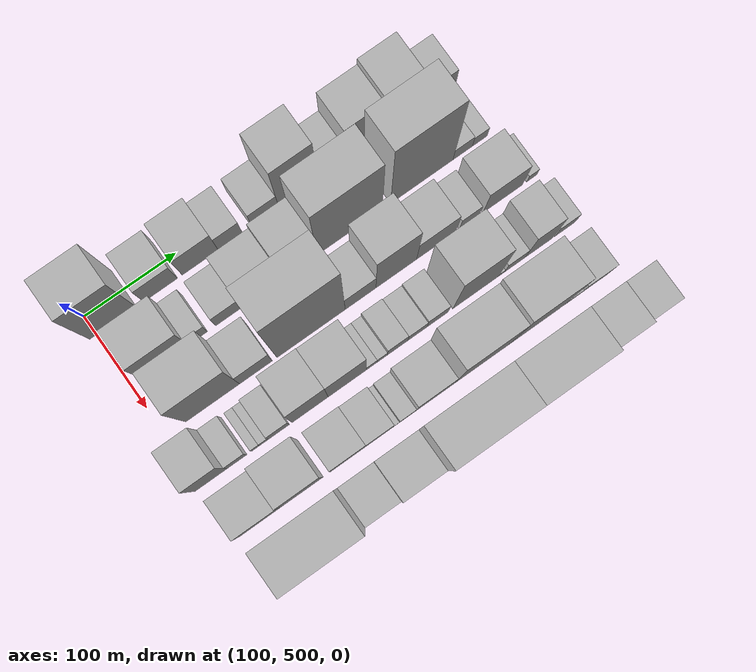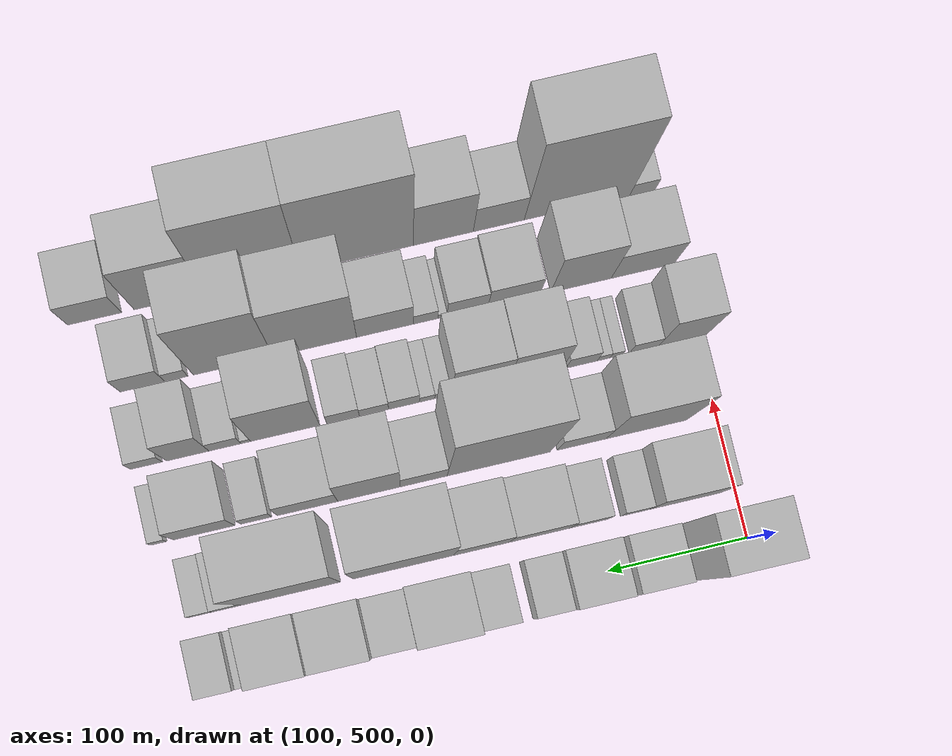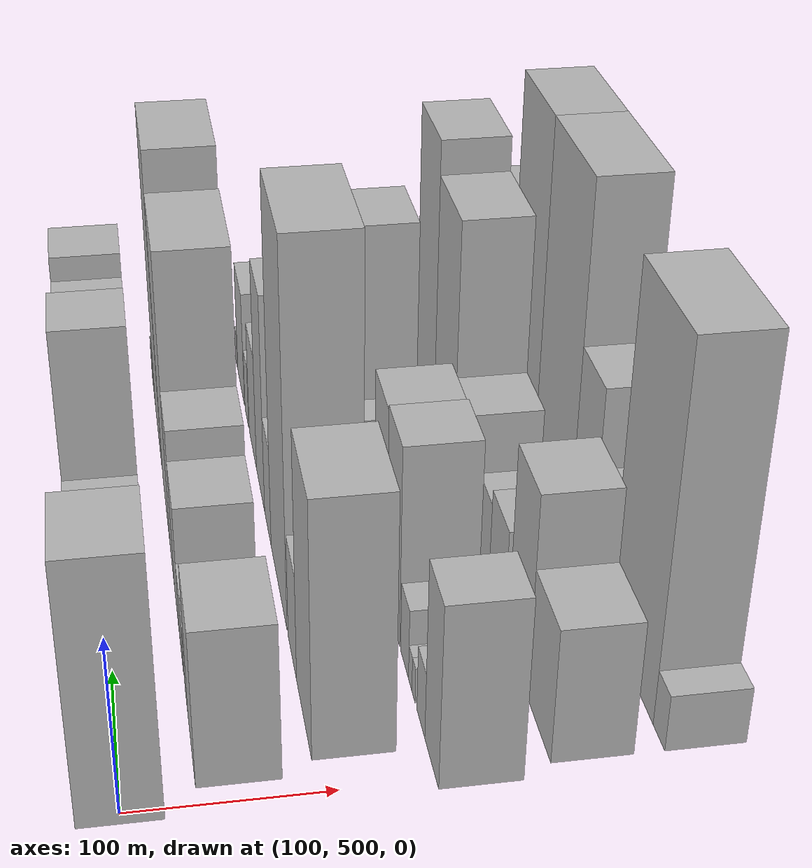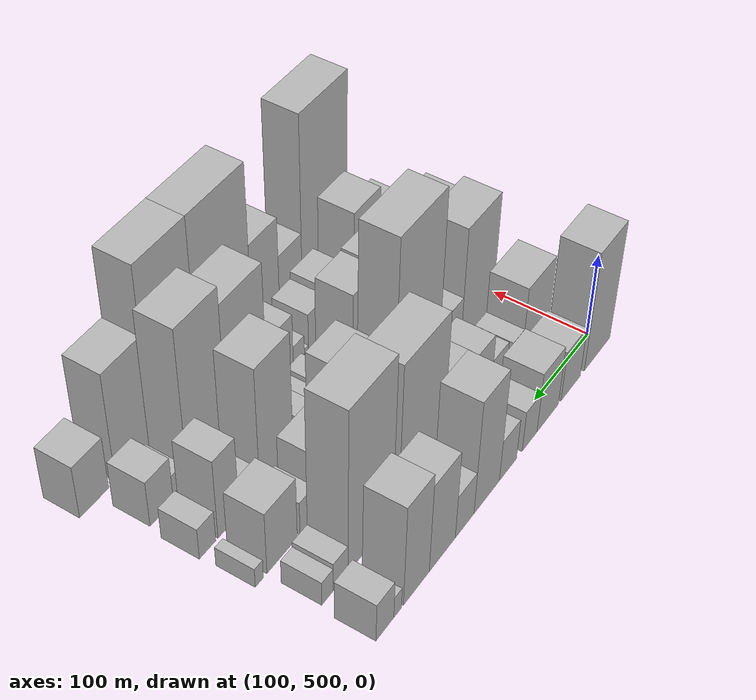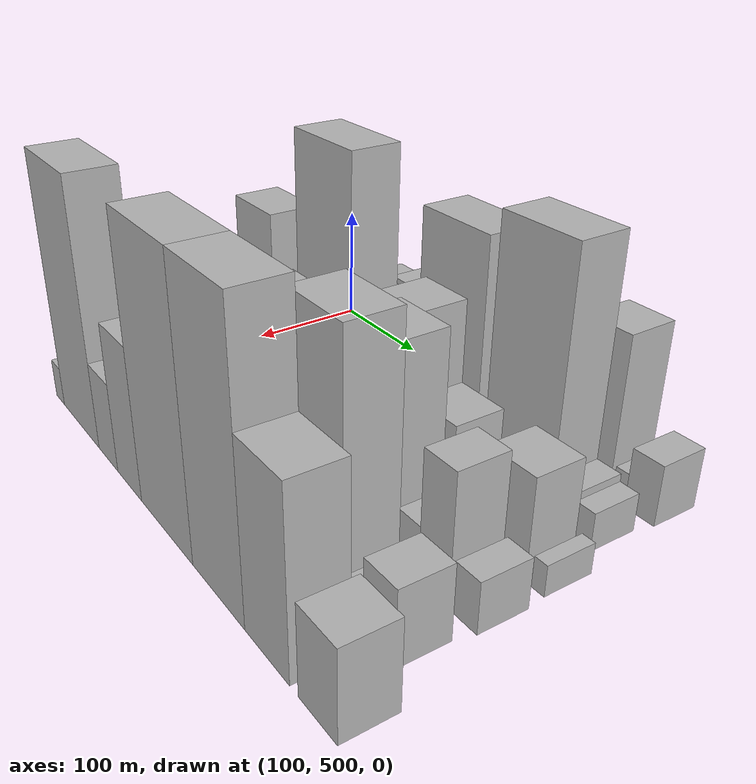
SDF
<sdf version="1.6">
 <world name="default">
  <model name="building_44">
   <static>1</static>
   <pose>100.0000 518.3641 0 0.000000 0.000000 0.000000</pose>
   <link name="link">
    <pose>0 0 73.50 0 0 0</pose>
    <collision name="collision"><geometry><box><size>40.0000 50.2085 147.0000</size></box></geometry></collision>
    <visual name="visual">
     <cast_shadows>0</cast_shadows>
     <geometry><box><size>40.0000 50.2085 147.0000</size></box></geometry>
     <material>
      <script>
       <uri>model://HANNAS_wall/materials/scripts</uri>
       <uri>model://HANNAS_wall/materials/textures</uri>
       <name>vrc/HANNAS_wall</name>
      </script>
     </material>
    </visual>
   </link>
  </model>
  <model name="building_45">
   <static>1</static>
   <pose>100.0000 569.8008 0 0.000000 0.000000 0.000000</pose>
   <link name="link">
    <pose>0 0 31.50 0 0 0</pose>
    <collision name="collision"><geometry><box><size>40.0000 36.6649 63.0000</size></box></geometry></collision>
    <visual name="visual">
     <cast_shadows>0</cast_shadows>
     <geometry><box><size>40.0000 36.6649 63.0000</size></box></geometry>
     <material>
      <script>
       <uri>model://HANNAS_wall/materials/scripts</uri>
       <uri>model://HANNAS_wall/materials/textures</uri>
       <name>vrc/HANNAS_wall</name>
      </script>
     </material>
    </visual>
   </link>
  </model>
  <model name="building_46">
   <static>1</static>
   <pose>100.0000 612.7377 0 0.000000 0.000000 0.000000</pose>
   <link name="link">
    <pose>0 0 37.50 0 0 0</pose>
    <collision name="collision"><geometry><box><size>40.0000 39.2089 75.0000</size></box></geometry></collision>
    <visual name="visual">
     <cast_shadows>0</cast_shadows>
     <geometry><box><size>40.0000 39.2089 75.0000</size></box></geometry>
     <material>
      <script>
       <uri>model://HANNAS_wall/materials/scripts</uri>
       <uri>model://HANNAS_wall/materials/textures</uri>
       <name>vrc/HANNAS_wall</name>
      </script>
     </material>
    </visual>
   </link>
  </model>
  <model name="building_47">
   <static>1</static>
   <pose>100.0000 645.6110 0 0.000000 0.000000 0.000000</pose>
   <link name="link">
    <pose>0 0 25.50 0 0 0</pose>
    <collision name="collision"><geometry><box><size>40.0000 26.5376 51.0000</size></box></geometry></collision>
    <visual name="visual">
     <cast_shadows>0</cast_shadows>
     <geometry><box><size>40.0000 26.5376 51.0000</size></box></geometry>
     <material>
      <script>
       <uri>model://HANNAS_wall/materials/scripts</uri>
       <uri>model://HANNAS_wall/materials/textures</uri>
       <name>vrc/HANNAS_wall</name>
      </script>
     </material>
    </visual>
   </link>
  </model>
  <model name="building_48">
   <static>1</static>
   <pose>100.0000 683.8776 0 0.000000 0.000000 0.000000</pose>
   <link name="link">
    <pose>0 0 25.50 0 0 0</pose>
    <collision name="collision"><geometry><box><size>40.0000 29.9957 51.0000</size></box></geometry></collision>
    <visual name="visual">
     <cast_shadows>0</cast_shadows>
     <geometry><box><size>40.0000 29.9957 51.0000</size></box></geometry>
     <material>
      <script>
       <uri>model://HANNAS_wall/materials/scripts</uri>
       <uri>model://HANNAS_wall/materials/textures</uri>
       <name>vrc/HANNAS_wall</name>
      </script>
     </material>
    </visual>
   </link>
  </model>
  <model name="building_49">
   <static>1</static>
   <pose>100.0000 720.3638 0 0.000000 0.000000 0.000000</pose>
   <link name="link">
    <pose>0 0 70.50 0 0 0</pose>
    <collision name="collision"><geometry><box><size>40.0000 42.9768 141.0000</size></box></geometry></collision>
    <visual name="visual">
     <cast_shadows>0</cast_shadows>
     <geometry><box><size>40.0000 42.9768 141.0000</size></box></geometry>
     <material>
      <script>
       <uri>model://HANNAS_wall/materials/scripts</uri>
       <uri>model://HANNAS_wall/materials/textures</uri>
       <name>vrc/HANNAS_wall</name>
      </script>
     </material>
    </visual>
   </link>
  </model>
  <model name="building_50">
   <static>1</static>
   <pose>100.0000 757.2081 0 0.000000 0.000000 0.000000</pose>
   <link name="link">
    <pose>0 0 27.00 0 0 0</pose>
    <collision name="collision"><geometry><box><size>40.0000 30.7118 54.0000</size></box></geometry></collision>
    <visual name="visual">
     <cast_shadows>0</cast_shadows>
     <geometry><box><size>40.0000 30.7118 54.0000</size></box></geometry>
     <material>
      <script>
       <uri>model://HANNAS_wall/materials/scripts</uri>
       <uri>model://HANNAS_wall/materials/textures</uri>
       <name>vrc/HANNAS_wall</name>
      </script>
     </material>
    </visual>
   </link>
  </model>
  <model name="building_51">
   <static>1</static>
   <pose>100.0000 793.3910 0 0.000000 0.000000 0.000000</pose>
   <link name="link">
    <pose>0 0 55.50 0 0 0</pose>
    <collision name="collision"><geometry><box><size>40.0000 41.6539 111.0000</size></box></geometry></collision>
    <visual name="visual">
     <cast_shadows>0</cast_shadows>
     <geometry><box><size>40.0000 41.6539 111.0000</size></box></geometry>
     <material>
      <script>
       <uri>model://HANNAS_wall/materials/scripts</uri>
       <uri>model://HANNAS_wall/materials/textures</uri>
       <name>vrc/HANNAS_wall</name>
      </script>
     </material>
    </visual>
   </link>
  </model>
  <model name="building_52">
   <static>1</static>
   <pose>100.0000 834.1180 0 0.000000 0.000000 0.000000</pose>
   <link name="link">
    <pose>0 0 63.00 0 0 0</pose>
    <collision name="collision"><geometry><box><size>40.0000 39.8001 126.0000</size></box></geometry></collision>
    <visual name="visual">
     <cast_shadows>0</cast_shadows>
     <geometry><box><size>40.0000 39.8001 126.0000</size></box></geometry>
     <material>
      <script>
       <uri>model://HANNAS_wall/materials/scripts</uri>
       <uri>model://HANNAS_wall/materials/textures</uri>
       <name>vrc/HANNAS_wall</name>
      </script>
     </material>
    </visual>
   </link>
  </model>
  <model name="building_53">
   <static>1</static>
   <pose>100.0000 862.7531 0 0.000000 0.000000 0.000000</pose>
   <link name="link">
    <pose>0 0 13.50 0 0 0</pose>
    <collision name="collision"><geometry><box><size>40.0000 11.4700 27.0000</size></box></geometry></collision>
    <visual name="visual">
     <cast_shadows>0</cast_shadows>
     <geometry><box><size>40.0000 11.4700 27.0000</size></box></geometry>
     <material>
      <script>
       <uri>model://HANNAS_wall/materials/scripts</uri>
       <uri>model://HANNAS_wall/materials/textures</uri>
       <name>vrc/HANNAS_wall</name>
      </script>
     </material>
    </visual>
   </link>
  </model>
  <model name="building_54">
   <static>1</static>
   <pose>100.0000 881.6972 0 0.000000 0.000000 0.000000</pose>
   <link name="link">
    <pose>0 0 24.00 0 0 0</pose>
    <collision name="collision"><geometry><box><size>40.0000 26.4182 48.0000</size></box></geometry></collision>
    <visual name="visual">
     <cast_shadows>0</cast_shadows>
     <geometry><box><size>40.0000 26.4182 48.0000</size></box></geometry>
     <material>
      <script>
       <uri>model://HANNAS_wall/materials/scripts</uri>
       <uri>model://HANNAS_wall/materials/textures</uri>
       <name>vrc/HANNAS_wall</name>
      </script>
     </material>
    </visual>
   </link>
  </model>
  <model name="building_99">
   <static>1</static>
   <pose>155.0000 536.5823 0 0.000000 0.000000 0.000000</pose>
   <link name="link">
    <pose>0 0 45.00 0 0 0</pose>
    <collision name="collision"><geometry><box><size>40.0000 50.9338 90.0000</size></box></geometry></collision>
    <visual name="visual">
     <cast_shadows>0</cast_shadows>
     <geometry><box><size>40.0000 50.9338 90.0000</size></box></geometry>
     <material>
      <script>
       <uri>model://HANNAS_wall/materials/scripts</uri>
       <uri>model://HANNAS_wall/materials/textures</uri>
       <name>vrc/HANNAS_wall</name>
      </script>
     </material>
    </visual>
   </link>
  </model>
  <model name="building_100">
   <static>1</static>
   <pose>155.0000 572.3786 0 0.000000 0.000000 0.000000</pose>
   <link name="link">
    <pose>0 0 19.50 0 0 0</pose>
    <collision name="collision"><geometry><box><size>40.0000 20.6586 39.0000</size></box></geometry></collision>
    <visual name="visual">
     <cast_shadows>0</cast_shadows>
     <geometry><box><size>40.0000 20.6586 39.0000</size></box></geometry>
     <material>
      <script>
       <uri>model://HANNAS_wall/materials/scripts</uri>
       <uri>model://HANNAS_wall/materials/textures</uri>
       <name>vrc/HANNAS_wall</name>
      </script>
     </material>
    </visual>
   </link>
  </model>
  <model name="building_101">
   <static>1</static>
   <pose>155.0000 605.6708 0 0.000000 0.000000 0.000000</pose>
   <link name="link">
    <pose>0 0 24.00 0 0 0</pose>
    <collision name="collision"><geometry><box><size>40.0000 27.9259 48.0000</size></box></geometry></collision>
    <visual name="visual">
     <cast_shadows>0</cast_shadows>
     <geometry><box><size>40.0000 27.9259 48.0000</size></box></geometry>
     <material>
      <script>
       <uri>model://HANNAS_wall/materials/scripts</uri>
       <uri>model://HANNAS_wall/materials/textures</uri>
       <name>vrc/HANNAS_wall</name>
      </script>
     </material>
    </visual>
   </link>
  </model>
  <model name="building_102">
   <static>1</static>
   <pose>155.0000 641.2579 0 0.000000 0.000000 0.000000</pose>
   <link name="link">
    <pose>0 0 40.50 0 0 0</pose>
    <collision name="collision"><geometry><box><size>40.0000 43.2483 81.0000</size></box></geometry></collision>
    <visual name="visual">
     <cast_shadows>0</cast_shadows>
     <geometry><box><size>40.0000 43.2483 81.0000</size></box></geometry>
     <material>
      <script>
       <uri>model://HANNAS_wall/materials/scripts</uri>
       <uri>model://HANNAS_wall/materials/textures</uri>
       <name>vrc/HANNAS_wall</name>
      </script>
     </material>
    </visual>
   </link>
  </model>
  <model name="building_103">
   <static>1</static>
   <pose>155.0000 682.6313 0 0.000000 0.000000 0.000000</pose>
   <link name="link">
    <pose>0 0 49.50 0 0 0</pose>
    <collision name="collision"><geometry><box><size>40.0000 39.4984 99.0000</size></box></geometry></collision>
    <visual name="visual">
     <cast_shadows>0</cast_shadows>
     <geometry><box><size>40.0000 39.4984 99.0000</size></box></geometry>
     <material>
      <script>
       <uri>model://HANNAS_wall/materials/scripts</uri>
       <uri>model://HANNAS_wall/materials/textures</uri>
       <name>vrc/HANNAS_wall</name>
      </script>
     </material>
    </visual>
   </link>
  </model>
  <model name="building_104">
   <static>1</static>
   <pose>155.0000 738.1567 0 0.000000 0.000000 0.000000</pose>
   <link name="link">
    <pose>0 0 90.00 0 0 0</pose>
    <collision name="collision"><geometry><box><size>40.0000 71.5523 180.0000</size></box></geometry></collision>
    <visual name="visual">
     <cast_shadows>0</cast_shadows>
     <geometry><box><size>40.0000 71.5523 180.0000</size></box></geometry>
     <material>
      <script>
       <uri>model://HANNAS_wall/materials/scripts</uri>
       <uri>model://HANNAS_wall/materials/textures</uri>
       <name>vrc/HANNAS_wall</name>
      </script>
     </material>
    </visual>
   </link>
  </model>
  <model name="building_105">
   <static>1</static>
   <pose>155.0000 817.5352 0 0.000000 0.000000 0.000000</pose>
   <link name="link">
    <pose>0 0 100.50 0 0 0</pose>
    <collision name="collision"><geometry><box><size>40.0000 69.2048 201.0000</size></box></geometry></collision>
    <visual name="visual">
     <cast_shadows>0</cast_shadows>
     <geometry><box><size>40.0000 69.2048 201.0000</size></box></geometry>
     <material>
      <script>
       <uri>model://HANNAS_wall/materials/scripts</uri>
       <uri>model://HANNAS_wall/materials/textures</uri>
       <name>vrc/HANNAS_wall</name>
      </script>
     </material>
    </visual>
   </link>
  </model>
  <model name="building_106">
   <static>1</static>
   <pose>155.0000 862.9307 0 0.000000 0.000000 0.000000</pose>
   <link name="link">
    <pose>0 0 18.00 0 0 0</pose>
    <collision name="collision"><geometry><box><size>40.0000 21.5860 36.0000</size></box></geometry></collision>
    <visual name="visual">
     <cast_shadows>0</cast_shadows>
     <geometry><box><size>40.0000 21.5860 36.0000</size></box></geometry>
     <material>
      <script>
       <uri>model://HANNAS_wall/materials/scripts</uri>
       <uri>model://HANNAS_wall/materials/textures</uri>
       <name>vrc/HANNAS_wall</name>
      </script>
     </material>
    </visual>
   </link>
  </model>
  <model name="building_107">
   <static>1</static>
   <pose>155.0000 882.0513 0 0.000000 0.000000 0.000000</pose>
   <link name="link">
    <pose>0 0 15.00 0 0 0</pose>
    <collision name="collision"><geometry><box><size>40.0000 16.6553 30.0000</size></box></geometry></collision>
    <visual name="visual">
     <cast_shadows>0</cast_shadows>
     <geometry><box><size>40.0000 16.6553 30.0000</size></box></geometry>
     <material>
      <script>
       <uri>model://HANNAS_wall/materials/scripts</uri>
       <uri>model://HANNAS_wall/materials/textures</uri>
       <name>vrc/HANNAS_wall</name>
      </script>
     </material>
    </visual>
   </link>
  </model>
  <model name="building_148">
   <static>1</static>
   <pose>210.0000 550.5122 0 0.000000 0.000000 0.000000</pose>
   <link name="link">
    <pose>0 0 73.50 0 0 0</pose>
    <collision name="collision"><geometry><box><size>40.0000 58.1063 147.0000</size></box></geometry></collision>
    <visual name="visual">
     <cast_shadows>0</cast_shadows>
     <geometry><box><size>40.0000 58.1063 147.0000</size></box></geometry>
     <material>
      <script>
       <uri>model://HANNAS_wall/materials/scripts</uri>
       <uri>model://HANNAS_wall/materials/textures</uri>
       <name>vrc/HANNAS_wall</name>
      </script>
     </material>
    </visual>
   </link>
  </model>
  <model name="building_149">
   <static>1</static>
   <pose>210.0000 597.1902 0 0.000000 0.000000 0.000000</pose>
   <link name="link">
    <pose>0 0 31.50 0 0 0</pose>
    <collision name="collision"><geometry><box><size>40.0000 35.2497 63.0000</size></box></geometry></collision>
    <visual name="visual">
     <cast_shadows>0</cast_shadows>
     <geometry><box><size>40.0000 35.2497 63.0000</size></box></geometry>
     <material>
      <script>
       <uri>model://HANNAS_wall/materials/scripts</uri>
       <uri>model://HANNAS_wall/materials/textures</uri>
       <name>vrc/HANNAS_wall</name>
      </script>
     </material>
    </visual>
   </link>
  </model>
  <model name="building_150">
   <static>1</static>
   <pose>210.0000 656.9177 0 0.000000 0.000000 0.000000</pose>
   <link name="link">
    <pose>0 0 112.50 0 0 0</pose>
    <collision name="collision"><geometry><box><size>40.0000 74.2052 225.0000</size></box></geometry></collision>
    <visual name="visual">
     <cast_shadows>0</cast_shadows>
     <geometry><box><size>40.0000 74.2052 225.0000</size></box></geometry>
     <material>
      <script>
       <uri>model://HANNAS_wall/materials/scripts</uri>
       <uri>model://HANNAS_wall/materials/textures</uri>
       <name>vrc/HANNAS_wall</name>
      </script>
     </material>
    </visual>
   </link>
  </model>
  <model name="building_151">
   <static>1</static>
   <pose>210.0000 710.8483 0 0.000000 0.000000 0.000000</pose>
   <link name="link">
    <pose>0 0 31.50 0 0 0</pose>
    <collision name="collision"><geometry><box><size>40.0000 33.6561 63.0000</size></box></geometry></collision>
    <visual name="visual">
     <cast_shadows>0</cast_shadows>
     <geometry><box><size>40.0000 33.6561 63.0000</size></box></geometry>
     <material>
      <script>
       <uri>model://HANNAS_wall/materials/scripts</uri>
       <uri>model://HANNAS_wall/materials/textures</uri>
       <name>vrc/HANNAS_wall</name>
      </script>
     </material>
    </visual>
   </link>
  </model>
  <model name="building_152">
   <static>1</static>
   <pose>210.0000 750.0266 0 0.000000 0.000000 0.000000</pose>
   <link name="link">
    <pose>0 0 69.00 0 0 0</pose>
    <collision name="collision"><geometry><box><size>40.0000 44.7004 138.0000</size></box></geometry></collision>
    <visual name="visual">
     <cast_shadows>0</cast_shadows>
     <geometry><box><size>40.0000 44.7004 138.0000</size></box></geometry>
     <material>
      <script>
       <uri>model://HANNAS_wall/materials/scripts</uri>
       <uri>model://HANNAS_wall/materials/textures</uri>
       <name>vrc/HANNAS_wall</name>
      </script>
     </material>
    </visual>
   </link>
  </model>
  <model name="building_153">
   <static>1</static>
   <pose>210.0000 793.9997 0 0.000000 0.000000 0.000000</pose>
   <link name="link">
    <pose>0 0 37.50 0 0 0</pose>
    <collision name="collision"><geometry><box><size>40.0000 43.2459 75.0000</size></box></geometry></collision>
    <visual name="visual">
     <cast_shadows>0</cast_shadows>
     <geometry><box><size>40.0000 43.2459 75.0000</size></box></geometry>
     <material>
      <script>
       <uri>model://HANNAS_wall/materials/scripts</uri>
       <uri>model://HANNAS_wall/materials/textures</uri>
       <name>vrc/HANNAS_wall</name>
      </script>
     </material>
    </visual>
   </link>
  </model>
  <model name="building_154">
   <static>1</static>
   <pose>210.0000 830.6722 0 0.000000 0.000000 0.000000</pose>
   <link name="link">
    <pose>0 0 21.00 0 0 0</pose>
    <collision name="collision"><geometry><box><size>40.0000 22.0991 42.0000</size></box></geometry></collision>
    <visual name="visual">
     <cast_shadows>0</cast_shadows>
     <geometry><box><size>40.0000 22.0991 42.0000</size></box></geometry>
     <material>
      <script>
       <uri>model://HANNAS_wall/materials/scripts</uri>
       <uri>model://HANNAS_wall/materials/textures</uri>
       <name>vrc/HANNAS_wall</name>
      </script>
     </material>
    </visual>
   </link>
  </model>
  <model name="building_155">
   <static>1</static>
   <pose>210.0000 867.6209 0 0.000000 0.000000 0.000000</pose>
   <link name="link">
    <pose>0 0 39.00 0 0 0</pose>
    <collision name="collision"><geometry><box><size>40.0000 43.7984 78.0000</size></box></geometry></collision>
    <visual name="visual">
     <cast_shadows>0</cast_shadows>
     <geometry><box><size>40.0000 43.7984 78.0000</size></box></geometry>
     <material>
      <script>
       <uri>model://HANNAS_wall/materials/scripts</uri>
       <uri>model://HANNAS_wall/materials/textures</uri>
       <name>vrc/HANNAS_wall</name>
      </script>
     </material>
    </visual>
   </link>
  </model>
  <model name="building_156">
   <static>1</static>
   <pose>210.0000 900.2096 0 0.000000 0.000000 0.000000</pose>
   <link name="link">
    <pose>0 0 12.00 0 0 0</pose>
    <collision name="collision"><geometry><box><size>40.0000 11.3791 24.0000</size></box></geometry></collision>
    <visual name="visual">
     <cast_shadows>0</cast_shadows>
     <geometry><box><size>40.0000 11.3791 24.0000</size></box></geometry>
     <material>
      <script>
       <uri>model://HANNAS_wall/materials/scripts</uri>
       <uri>model://HANNAS_wall/materials/textures</uri>
       <name>vrc/HANNAS_wall</name>
      </script>
     </material>
    </visual>
   </link>
  </model>
  <model name="building_201">
   <static>1</static>
   <pose>265.0000 510.9204 0 0.000000 0.000000 0.000000</pose>
   <link name="link">
    <pose>0 0 52.50 0 0 0</pose>
    <collision name="collision"><geometry><box><size>40.0000 34.5764 105.0000</size></box></geometry></collision>
    <visual name="visual">
     <cast_shadows>0</cast_shadows>
     <geometry><box><size>40.0000 34.5764 105.0000</size></box></geometry>
     <material>
      <script>
       <uri>model://HANNAS_wall/materials/scripts</uri>
       <uri>model://HANNAS_wall/materials/textures</uri>
       <name>vrc/HANNAS_wall</name>
      </script>
     </material>
    </visual>
   </link>
  </model>
  <model name="building_202">
   <static>1</static>
   <pose>265.0000 538.6721 0 0.000000 0.000000 0.000000</pose>
   <link name="link">
    <pose>0 0 19.50 0 0 0</pose>
    <collision name="collision"><geometry><box><size>40.0000 20.9270 39.0000</size></box></geometry></collision>
    <visual name="visual">
     <cast_shadows>0</cast_shadows>
     <geometry><box><size>40.0000 20.9270 39.0000</size></box></geometry>
     <material>
      <script>
       <uri>model://HANNAS_wall/materials/scripts</uri>
       <uri>model://HANNAS_wall/materials/textures</uri>
       <name>vrc/HANNAS_wall</name>
      </script>
     </material>
    </visual>
   </link>
  </model>
  <model name="building_203">
   <static>1</static>
   <pose>265.0000 558.5217 0 0.000000 0.000000 0.000000</pose>
   <link name="link">
    <pose>0 0 10.50 0 0 0</pose>
    <collision name="collision"><geometry><box><size>40.0000 8.7724 21.0000</size></box></geometry></collision>
    <visual name="visual">
     <cast_shadows>0</cast_shadows>
     <geometry><box><size>40.0000 8.7724 21.0000</size></box></geometry>
     <material>
      <script>
       <uri>model://HANNAS_wall/materials/scripts</uri>
       <uri>model://HANNAS_wall/materials/textures</uri>
       <name>vrc/HANNAS_wall</name>
      </script>
     </material>
    </visual>
   </link>
  </model>
  <model name="building_204">
   <static>1</static>
   <pose>265.0000 567.6125 0 0.000000 0.000000 0.000000</pose>
   <link name="link">
    <pose>0 0 10.50 0 0 0</pose>
    <collision name="collision"><geometry><box><size>40.0000 9.4091 21.0000</size></box></geometry></collision>
    <visual name="visual">
     <cast_shadows>0</cast_shadows>
     <geometry><box><size>40.0000 9.4091 21.0000</size></box></geometry>
     <material>
      <script>
       <uri>model://HANNAS_wall/materials/scripts</uri>
       <uri>model://HANNAS_wall/materials/textures</uri>
       <name>vrc/HANNAS_wall</name>
      </script>
     </material>
    </visual>
   </link>
  </model>
  <model name="building_205">
   <static>1</static>
   <pose>265.0000 583.6075 0 0.000000 0.000000 0.000000</pose>
   <link name="link">
    <pose>0 0 21.00 0 0 0</pose>
    <collision name="collision"><geometry><box><size>40.0000 22.5809 42.0000</size></box></geometry></collision>
    <visual name="visual">
     <cast_shadows>0</cast_shadows>
     <geometry><box><size>40.0000 22.5809 42.0000</size></box></geometry>
     <material>
      <script>
       <uri>model://HANNAS_wall/materials/scripts</uri>
       <uri>model://HANNAS_wall/materials/textures</uri>
       <name>vrc/HANNAS_wall</name>
      </script>
     </material>
    </visual>
   </link>
  </model>
  <model name="building_206">
   <static>1</static>
   <pose>265.0000 617.3824 0 0.000000 0.000000 0.000000</pose>
   <link name="link">
    <pose>0 0 60.00 0 0 0</pose>
    <collision name="collision"><geometry><box><size>40.0000 38.9689 120.0000</size></box></geometry></collision>
    <visual name="visual">
     <cast_shadows>0</cast_shadows>
     <geometry><box><size>40.0000 38.9689 120.0000</size></box></geometry>
     <material>
      <script>
       <uri>model://HANNAS_wall/materials/scripts</uri>
       <uri>model://HANNAS_wall/materials/textures</uri>
       <name>vrc/HANNAS_wall</name>
      </script>
     </material>
    </visual>
   </link>
  </model>
  <model name="building_207">
   <static>1</static>
   <pose>265.0000 657.5342 0 0.000000 0.000000 0.000000</pose>
   <link name="link">
    <pose>0 0 58.50 0 0 0</pose>
    <collision name="collision"><geometry><box><size>40.0000 41.3347 117.0000</size></box></geometry></collision>
    <visual name="visual">
     <cast_shadows>0</cast_shadows>
     <geometry><box><size>40.0000 41.3347 117.0000</size></box></geometry>
     <material>
      <script>
       <uri>model://HANNAS_wall/materials/scripts</uri>
       <uri>model://HANNAS_wall/materials/textures</uri>
       <name>vrc/HANNAS_wall</name>
      </script>
     </material>
    </visual>
   </link>
  </model>
  <model name="building_208">
   <static>1</static>
   <pose>265.0000 684.0892 0 0.000000 0.000000 0.000000</pose>
   <link name="link">
    <pose>0 0 12.00 0 0 0</pose>
    <collision name="collision"><geometry><box><size>40.0000 11.7752 24.0000</size></box></geometry></collision>
    <visual name="visual">
     <cast_shadows>0</cast_shadows>
     <geometry><box><size>40.0000 11.7752 24.0000</size></box></geometry>
     <material>
      <script>
       <uri>model://HANNAS_wall/materials/scripts</uri>
       <uri>model://HANNAS_wall/materials/textures</uri>
       <name>vrc/HANNAS_wall</name>
      </script>
     </material>
    </visual>
   </link>
  </model>
  <model name="building_209">
   <static>1</static>
   <pose>265.0000 695.5169 0 0.000000 0.000000 0.000000</pose>
   <link name="link">
    <pose>0 0 12.00 0 0 0</pose>
    <collision name="collision"><geometry><box><size>40.0000 11.0803 24.0000</size></box></geometry></collision>
    <visual name="visual">
     <cast_shadows>0</cast_shadows>
     <geometry><box><size>40.0000 11.0803 24.0000</size></box></geometry>
     <material>
      <script>
       <uri>model://HANNAS_wall/materials/scripts</uri>
       <uri>model://HANNAS_wall/materials/textures</uri>
       <name>vrc/HANNAS_wall</name>
      </script>
     </material>
    </visual>
   </link>
  </model>
  <model name="building_210">
   <static>1</static>
   <pose>265.0000 712.1629 0 0.000000 0.000000 0.000000</pose>
   <link name="link">
    <pose>0 0 21.00 0 0 0</pose>
    <collision name="collision"><geometry><box><size>40.0000 22.2115 42.0000</size></box></geometry></collision>
    <visual name="visual">
     <cast_shadows>0</cast_shadows>
     <geometry><box><size>40.0000 22.2115 42.0000</size></box></geometry>
     <material>
      <script>
       <uri>model://HANNAS_wall/materials/scripts</uri>
       <uri>model://HANNAS_wall/materials/textures</uri>
       <name>vrc/HANNAS_wall</name>
      </script>
     </material>
    </visual>
   </link>
  </model>
  <model name="building_211">
   <static>1</static>
   <pose>265.0000 733.7759 0 0.000000 0.000000 0.000000</pose>
   <link name="link">
    <pose>0 0 18.00 0 0 0</pose>
    <collision name="collision"><geometry><box><size>40.0000 21.0145 36.0000</size></box></geometry></collision>
    <visual name="visual">
     <cast_shadows>0</cast_shadows>
     <geometry><box><size>40.0000 21.0145 36.0000</size></box></geometry>
     <material>
      <script>
       <uri>model://HANNAS_wall/materials/scripts</uri>
       <uri>model://HANNAS_wall/materials/textures</uri>
       <name>vrc/HANNAS_wall</name>
      </script>
     </material>
    </visual>
   </link>
  </model>
  <model name="building_212">
   <static>1</static>
   <pose>265.0000 755.9635 0 0.000000 0.000000 0.000000</pose>
   <link name="link">
    <pose>0 0 22.50 0 0 0</pose>
    <collision name="collision"><geometry><box><size>40.0000 23.3608 45.0000</size></box></geometry></collision>
    <visual name="visual">
     <cast_shadows>0</cast_shadows>
     <geometry><box><size>40.0000 23.3608 45.0000</size></box></geometry>
     <material>
      <script>
       <uri>model://HANNAS_wall/materials/scripts</uri>
       <uri>model://HANNAS_wall/materials/textures</uri>
       <name>vrc/HANNAS_wall</name>
      </script>
     </material>
    </visual>
   </link>
  </model>
  <model name="building_213">
   <static>1</static>
   <pose>265.0000 797.5456 0 0.000000 0.000000 0.000000</pose>
   <link name="link">
    <pose>0 0 76.50 0 0 0</pose>
    <collision name="collision"><geometry><box><size>40.0000 49.8034 153.0000</size></box></geometry></collision>
    <visual name="visual">
     <cast_shadows>0</cast_shadows>
     <geometry><box><size>40.0000 49.8034 153.0000</size></box></geometry>
     <material>
      <script>
       <uri>model://HANNAS_wall/materials/scripts</uri>
       <uri>model://HANNAS_wall/materials/textures</uri>
       <name>vrc/HANNAS_wall</name>
      </script>
     </material>
    </visual>
   </link>
  </model>
  <model name="building_214">
   <static>1</static>
   <pose>265.0000 825.9558 0 0.000000 0.000000 0.000000</pose>
   <link name="link">
    <pose>0 0 7.50 0 0 0</pose>
    <collision name="collision"><geometry><box><size>40.0000 7.0169 15.0000</size></box></geometry></collision>
    <visual name="visual">
     <cast_shadows>0</cast_shadows>
     <geometry><box><size>40.0000 7.0169 15.0000</size></box></geometry>
     <material>
      <script>
       <uri>model://HANNAS_wall/materials/scripts</uri>
       <uri>model://HANNAS_wall/materials/textures</uri>
       <name>vrc/HANNAS_wall</name>
      </script>
     </material>
    </visual>
   </link>
  </model>
  <model name="building_215">
   <static>1</static>
   <pose>265.0000 840.8919 0 0.000000 0.000000 0.000000</pose>
   <link name="link">
    <pose>0 0 21.00 0 0 0</pose>
    <collision name="collision"><geometry><box><size>40.0000 22.8554 42.0000</size></box></geometry></collision>
    <visual name="visual">
     <cast_shadows>0</cast_shadows>
     <geometry><box><size>40.0000 22.8554 42.0000</size></box></geometry>
     <material>
      <script>
       <uri>model://HANNAS_wall/materials/scripts</uri>
       <uri>model://HANNAS_wall/materials/textures</uri>
       <name>vrc/HANNAS_wall</name>
      </script>
     </material>
    </visual>
   </link>
  </model>
  <model name="building_216">
   <static>1</static>
   <pose>265.0000 867.5062 0 0.000000 0.000000 0.000000</pose>
   <link name="link">
    <pose>0 0 49.50 0 0 0</pose>
    <collision name="collision"><geometry><box><size>40.0000 30.3731 99.0000</size></box></geometry></collision>
    <visual name="visual">
     <cast_shadows>0</cast_shadows>
     <geometry><box><size>40.0000 30.3731 99.0000</size></box></geometry>
     <material>
      <script>
       <uri>model://HANNAS_wall/materials/scripts</uri>
       <uri>model://HANNAS_wall/materials/textures</uri>
       <name>vrc/HANNAS_wall</name>
      </script>
     </material>
    </visual>
   </link>
  </model>
  <model name="building_217">
   <static>1</static>
   <pose>265.0000 897.0723 0 0.000000 0.000000 0.000000</pose>
   <link name="link">
    <pose>0 0 19.50 0 0 0</pose>
    <collision name="collision"><geometry><box><size>40.0000 22.7591 39.0000</size></box></geometry></collision>
    <visual name="visual">
     <cast_shadows>0</cast_shadows>
     <geometry><box><size>40.0000 22.7591 39.0000</size></box></geometry>
     <material>
      <script>
       <uri>model://HANNAS_wall/materials/scripts</uri>
       <uri>model://HANNAS_wall/materials/textures</uri>
       <name>vrc/HANNAS_wall</name>
      </script>
     </material>
    </visual>
   </link>
  </model>
  <model name="building_259">
   <static>1</static>
   <pose>320.0000 525.7614 0 0.000000 0.000000 0.000000</pose>
   <link name="link">
    <pose>0 0 39.00 0 0 0</pose>
    <collision name="collision"><geometry><box><size>40.0000 45.8000 78.0000</size></box></geometry></collision>
    <visual name="visual">
     <cast_shadows>0</cast_shadows>
     <geometry><box><size>40.0000 45.8000 78.0000</size></box></geometry>
     <material>
      <script>
       <uri>model://HANNAS_wall/materials/scripts</uri>
       <uri>model://HANNAS_wall/materials/textures</uri>
       <name>vrc/HANNAS_wall</name>
      </script>
     </material>
    </visual>
   </link>
  </model>
  <model name="building_260">
   <static>1</static>
   <pose>320.0000 570.7045 0 0.000000 0.000000 0.000000</pose>
   <link name="link">
    <pose>0 0 60.00 0 0 0</pose>
    <collision name="collision"><geometry><box><size>40.0000 44.0861 120.0000</size></box></geometry></collision>
    <visual name="visual">
     <cast_shadows>0</cast_shadows>
     <geometry><box><size>40.0000 44.0861 120.0000</size></box></geometry>
     <material>
      <script>
       <uri>model://HANNAS_wall/materials/scripts</uri>
       <uri>model://HANNAS_wall/materials/textures</uri>
       <name>vrc/HANNAS_wall</name>
      </script>
     </material>
    </visual>
   </link>
  </model>
  <model name="building_261">
   <static>1</static>
   <pose>320.0000 619.5643 0 0.000000 0.000000 0.000000</pose>
   <link name="link">
    <pose>0 0 31.50 0 0 0</pose>
    <collision name="collision"><geometry><box><size>40.0000 37.6336 63.0000</size></box></geometry></collision>
    <visual name="visual">
     <cast_shadows>0</cast_shadows>
     <geometry><box><size>40.0000 37.6336 63.0000</size></box></geometry>
     <material>
      <script>
       <uri>model://HANNAS_wall/materials/scripts</uri>
       <uri>model://HANNAS_wall/materials/textures</uri>
       <name>vrc/HANNAS_wall</name>
      </script>
     </material>
    </visual>
   </link>
  </model>
  <model name="building_262">
   <static>1</static>
   <pose>320.0000 653.2841 0 0.000000 0.000000 0.000000</pose>
   <link name="link">
    <pose>0 0 27.00 0 0 0</pose>
    <collision name="collision"><geometry><box><size>40.0000 29.8059 54.0000</size></box></geometry></collision>
    <visual name="visual">
     <cast_shadows>0</cast_shadows>
     <geometry><box><size>40.0000 29.8059 54.0000</size></box></geometry>
     <material>
      <script>
       <uri>model://HANNAS_wall/materials/scripts</uri>
       <uri>model://HANNAS_wall/materials/textures</uri>
       <name>vrc/HANNAS_wall</name>
      </script>
     </material>
    </visual>
   </link>
  </model>
  <model name="building_263">
   <static>1</static>
   <pose>320.0000 671.4563 0 0.000000 0.000000 0.000000</pose>
   <link name="link">
    <pose>0 0 7.50 0 0 0</pose>
    <collision name="collision"><geometry><box><size>40.0000 6.5385 15.0000</size></box></geometry></collision>
    <visual name="visual">
     <cast_shadows>0</cast_shadows>
     <geometry><box><size>40.0000 6.5385 15.0000</size></box></geometry>
     <material>
      <script>
       <uri>model://HANNAS_wall/materials/scripts</uri>
       <uri>model://HANNAS_wall/materials/textures</uri>
       <name>vrc/HANNAS_wall</name>
      </script>
     </material>
    </visual>
   </link>
  </model>
  <model name="building_264">
   <static>1</static>
   <pose>320.0000 683.6394 0 0.000000 0.000000 0.000000</pose>
   <link name="link">
    <pose>0 0 16.50 0 0 0</pose>
    <collision name="collision"><geometry><box><size>40.0000 17.8277 33.0000</size></box></geometry></collision>
    <visual name="visual">
     <cast_shadows>0</cast_shadows>
     <geometry><box><size>40.0000 17.8277 33.0000</size></box></geometry>
     <material>
      <script>
       <uri>model://HANNAS_wall/materials/scripts</uri>
       <uri>model://HANNAS_wall/materials/textures</uri>
       <name>vrc/HANNAS_wall</name>
      </script>
     </material>
    </visual>
   </link>
  </model>
  <model name="building_265">
   <static>1</static>
   <pose>320.0000 713.0995 0 0.000000 0.000000 0.000000</pose>
   <link name="link">
    <pose>0 0 37.50 0 0 0</pose>
    <collision name="collision"><geometry><box><size>40.0000 41.0924 75.0000</size></box></geometry></collision>
    <visual name="visual">
     <cast_shadows>0</cast_shadows>
     <geometry><box><size>40.0000 41.0924 75.0000</size></box></geometry>
     <material>
      <script>
       <uri>model://HANNAS_wall/materials/scripts</uri>
       <uri>model://HANNAS_wall/materials/textures</uri>
       <name>vrc/HANNAS_wall</name>
      </script>
     </material>
    </visual>
   </link>
  </model>
  <model name="building_266">
   <static>1</static>
   <pose>320.0000 763.6315 0 0.000000 0.000000 0.000000</pose>
   <link name="link">
    <pose>0 0 85.50 0 0 0</pose>
    <collision name="collision"><geometry><box><size>40.0000 59.9717 171.0000</size></box></geometry></collision>
    <visual name="visual">
     <cast_shadows>0</cast_shadows>
     <geometry><box><size>40.0000 59.9717 171.0000</size></box></geometry>
     <material>
      <script>
       <uri>model://HANNAS_wall/materials/scripts</uri>
       <uri>model://HANNAS_wall/materials/textures</uri>
       <name>vrc/HANNAS_wall</name>
      </script>
     </material>
    </visual>
   </link>
  </model>
  <model name="building_267">
   <static>1</static>
   <pose>320.0000 822.5039 0 0.000000 0.000000 0.000000</pose>
   <link name="link">
    <pose>0 0 96.00 0 0 0</pose>
    <collision name="collision"><geometry><box><size>40.0000 57.7731 192.0000</size></box></geometry></collision>
    <visual name="visual">
     <cast_shadows>0</cast_shadows>
     <geometry><box><size>40.0000 57.7731 192.0000</size></box></geometry>
     <material>
      <script>
       <uri>model://HANNAS_wall/materials/scripts</uri>
       <uri>model://HANNAS_wall/materials/textures</uri>
       <name>vrc/HANNAS_wall</name>
      </script>
     </material>
    </visual>
   </link>
  </model>
  <model name="building_268">
   <static>1</static>
   <pose>320.0000 863.7187 0 0.000000 0.000000 0.000000</pose>
   <link name="link">
    <pose>0 0 16.50 0 0 0</pose>
    <collision name="collision"><geometry><box><size>40.0000 16.6565 33.0000</size></box></geometry></collision>
    <visual name="visual">
     <cast_shadows>0</cast_shadows>
     <geometry><box><size>40.0000 16.6565 33.0000</size></box></geometry>
     <material>
      <script>
       <uri>model://HANNAS_wall/materials/scripts</uri>
       <uri>model://HANNAS_wall/materials/textures</uri>
       <name>vrc/HANNAS_wall</name>
      </script>
     </material>
    </visual>
   </link>
  </model>
  <model name="building_269">
   <static>1</static>
   <pose>320.0000 888.1144 0 0.000000 0.000000 0.000000</pose>
   <link name="link">
    <pose>0 0 28.50 0 0 0</pose>
    <collision name="collision"><geometry><box><size>40.0000 32.1350 57.0000</size></box></geometry></collision>
    <visual name="visual">
     <cast_shadows>0</cast_shadows>
     <geometry><box><size>40.0000 32.1350 57.0000</size></box></geometry>
     <material>
      <script>
       <uri>model://HANNAS_wall/materials/scripts</uri>
       <uri>model://HANNAS_wall/materials/textures</uri>
       <name>vrc/HANNAS_wall</name>
      </script>
     </material>
    </visual>
   </link>
  </model>
  <model name="building_317">
   <static>1</static>
   <pose>375.0000 512.1083 0 0.000000 0.000000 0.000000</pose>
   <link name="link">
    <pose>0 0 16.50 0 0 0</pose>
    <collision name="collision"><geometry><box><size>40.0000 18.6960 33.0000</size></box></geometry></collision>
    <visual name="visual">
     <cast_shadows>0</cast_shadows>
     <geometry><box><size>40.0000 18.6960 33.0000</size></box></geometry>
     <material>
      <script>
       <uri>model://HANNAS_wall/materials/scripts</uri>
       <uri>model://HANNAS_wall/materials/textures</uri>
       <name>vrc/HANNAS_wall</name>
      </script>
     </material>
    </visual>
   </link>
  </model>
  <model name="building_318">
   <static>1</static>
   <pose>375.0000 560.0860 0 0.000000 0.000000 0.000000</pose>
   <link name="link">
    <pose>0 0 106.50 0 0 0</pose>
    <collision name="collision"><geometry><box><size>40.0000 77.2595 213.0000</size></box></geometry></collision>
    <visual name="visual">
     <cast_shadows>0</cast_shadows>
     <geometry><box><size>40.0000 77.2595 213.0000</size></box></geometry>
     <material>
      <script>
       <uri>model://HANNAS_wall/materials/scripts</uri>
       <uri>model://HANNAS_wall/materials/textures</uri>
       <name>vrc/HANNAS_wall</name>
      </script>
     </material>
    </visual>
   </link>
  </model>
  <model name="building_319">
   <static>1</static>
   <pose>375.0000 617.3307 0 0.000000 0.000000 0.000000</pose>
   <link name="link">
    <pose>0 0 36.00 0 0 0</pose>
    <collision name="collision"><geometry><box><size>40.0000 37.2298 72.0000</size></box></geometry></collision>
    <visual name="visual">
     <cast_shadows>0</cast_shadows>
     <geometry><box><size>40.0000 37.2298 72.0000</size></box></geometry>
     <material>
      <script>
       <uri>model://HANNAS_wall/materials/scripts</uri>
       <uri>model://HANNAS_wall/materials/textures</uri>
       <name>vrc/HANNAS_wall</name>
      </script>
     </material>
    </visual>
   </link>
  </model>
  <model name="building_320">
   <static>1</static>
   <pose>375.0000 657.8117 0 0.000000 0.000000 0.000000</pose>
   <link name="link">
    <pose>0 0 60.00 0 0 0</pose>
    <collision name="collision"><geometry><box><size>40.0000 43.7323 120.0000</size></box></geometry></collision>
    <visual name="visual">
     <cast_shadows>0</cast_shadows>
     <geometry><box><size>40.0000 43.7323 120.0000</size></box></geometry>
     <material>
      <script>
       <uri>model://HANNAS_wall/materials/scripts</uri>
       <uri>model://HANNAS_wall/materials/textures</uri>
       <name>vrc/HANNAS_wall</name>
      </script>
     </material>
    </visual>
   </link>
  </model>
  <model name="building_321">
   <static>1</static>
   <pose>375.0000 720.5138 0 0.000000 0.000000 0.000000</pose>
   <link name="link">
    <pose>0 0 108.00 0 0 0</pose>
    <collision name="collision"><geometry><box><size>40.0000 81.6717 216.0000</size></box></geometry></collision>
    <visual name="visual">
     <cast_shadows>0</cast_shadows>
     <geometry><box><size>40.0000 81.6717 216.0000</size></box></geometry>
     <material>
      <script>
       <uri>model://HANNAS_wall/materials/scripts</uri>
       <uri>model://HANNAS_wall/materials/textures</uri>
       <name>vrc/HANNAS_wall</name>
      </script>
     </material>
    </visual>
   </link>
  </model>
  <model name="building_322">
   <static>1</static>
   <pose>375.0000 796.1094 0 0.000000 0.000000 0.000000</pose>
   <link name="link">
    <pose>0 0 108.00 0 0 0</pose>
    <collision name="collision"><geometry><box><size>40.0000 69.5196 216.0000</size></box></geometry></collision>
    <visual name="visual">
     <cast_shadows>0</cast_shadows>
     <geometry><box><size>40.0000 69.5196 216.0000</size></box></geometry>
     <material>
      <script>
       <uri>model://HANNAS_wall/materials/scripts</uri>
       <uri>model://HANNAS_wall/materials/textures</uri>
       <name>vrc/HANNAS_wall</name>
      </script>
     </material>
    </visual>
   </link>
  </model>
  <model name="building_323">
   <static>1</static>
   <pose>375.0000 856.5626 0 0.000000 0.000000 0.000000</pose>
   <link name="link">
    <pose>0 0 67.50 0 0 0</pose>
    <collision name="collision"><geometry><box><size>40.0000 51.3868 135.0000</size></box></geometry></collision>
    <visual name="visual">
     <cast_shadows>0</cast_shadows>
     <geometry><box><size>40.0000 51.3868 135.0000</size></box></geometry>
     <material>
      <script>
       <uri>model://HANNAS_wall/materials/scripts</uri>
       <uri>model://HANNAS_wall/materials/textures</uri>
       <name>vrc/HANNAS_wall</name>
      </script>
     </material>
    </visual>
   </link>
  </model>
  <model name="building_324">
   <static>1</static>
   <pose>375.0000 910.7765 0 0.000000 0.000000 0.000000</pose>
   <link name="link">
    <pose>0 0 33.00 0 0 0</pose>
    <collision name="collision"><geometry><box><size>40.0000 39.0409 66.0000</size></box></geometry></collision>
    <visual name="visual">
     <cast_shadows>0</cast_shadows>
     <geometry><box><size>40.0000 39.0409 66.0000</size></box></geometry>
     <material>
      <script>
       <uri>model://HANNAS_wall/materials/scripts</uri>
       <uri>model://HANNAS_wall/materials/textures</uri>
       <name>vrc/HANNAS_wall</name>
      </script>
     </material>
    </visual>
   </link>
  </model>
 </world>
</sdf>
